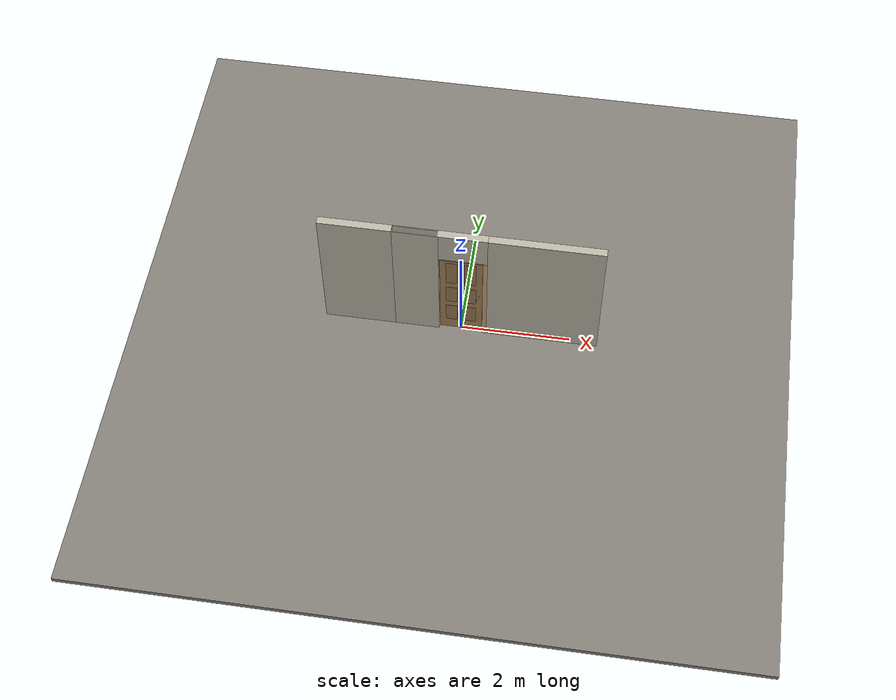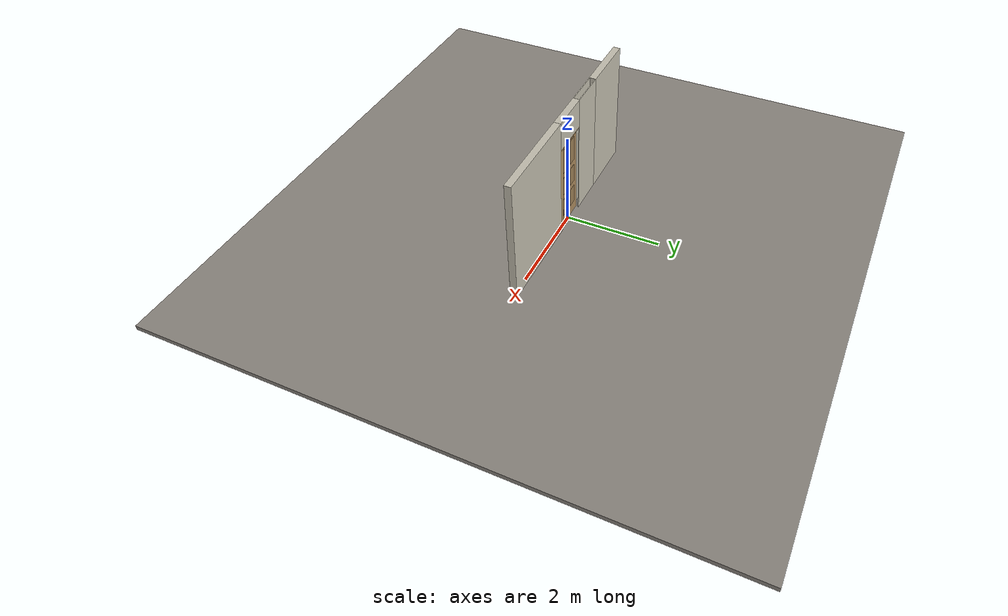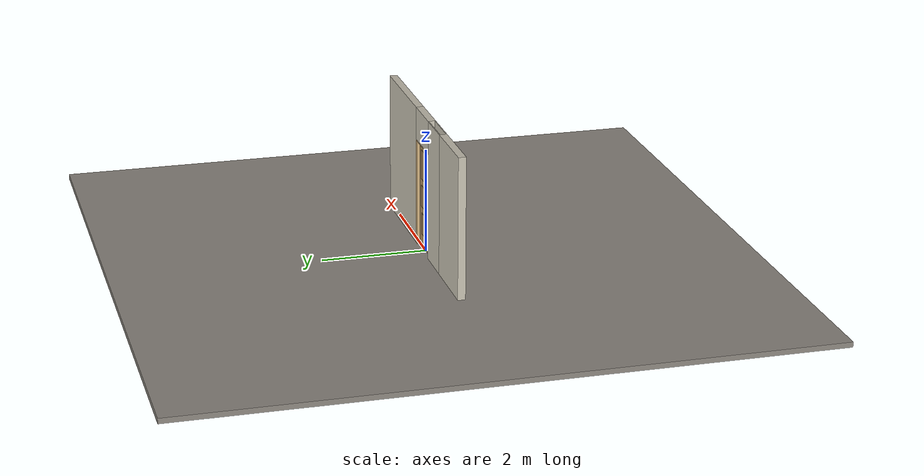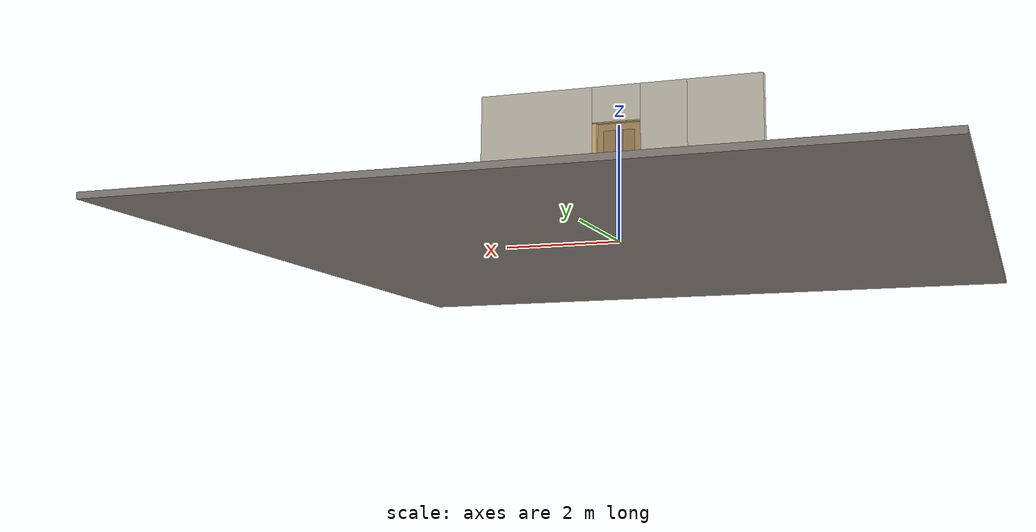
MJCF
<?xml version="1.0" ?>
<mujoco model="db0018_sliding_single_simple">
  <compiler angle="radian" meshdir="../../hardware" texturedir="../../textures" autolimits="true" inertiafromgeom="false"/>
  <option timestep="0.002" integrator="implicitfast" cone="elliptic" impratio="10" noslip_iterations="3">
    <flag multiccd="enable"/>
  </option>
  <size memory="16M"/>
  <default>
    <geom condim="4" solref="0.005 1" solimp="0.95 0.99 0.001"/>
    <joint solreflimit="0.005 1" solimplimit="0.95 0.99 0.001"/>
    <tendon solreflimit="0.005 1"/>
    <equality solref="0.002 1"/>
  </default>
  <visual>
    <headlight ambient="0.4 0.4 0.4" diffuse="0.7 0.7 0.7" specular="0.2 0.2 0.2"/>
    <quality shadowsize="4096"/>
    <map znear="0.01" zfar="60"/>
  </visual>
  <asset>
    <material name="mat_floor" rgba="0.55 0.53 0.5 1" specular="0.2" shininess="0.15" reflectance="0"/>
    <material name="mat_wall" rgba="0.78 0.76 0.7 1" specular="0.2" shininess="0.1" reflectance="0"/>
    <material name="mat_frame" rgba="0.82 0.7 0.5 1" specular="0.2" shininess="0.45" reflectance="0"/>
    <material name="mat_track" rgba="0.8 0.81 0.83 1" specular="0.8" shininess="0.6" reflectance="0.4"/>
    <material name="mat_leaf" rgba="0.684 0.555 0.375 1" specular="0.2" shininess="0.45" reflectance="0"/>
    <material name="mat_leaf_panel" rgba="0.629 0.51 0.345 1" specular="0.2" shininess="0.45" reflectance="0"/>
    <material name="mat_roller" rgba="0.65 0.66 0.68 1" specular="0.74" shininess="0.5" reflectance="0.36"/>
    <material name="mat_op_nickel_satin" rgba="0.72 0.7 0.66 1" specular="0.8" shininess="0.65" reflectance="0.4"/>
    <material name="mat_hook" rgba="0.75 0.76 0.77 1" specular="0.8" shininess="0.65" reflectance="0.4"/>
    <texture name="skybox" type="skybox" builtin="gradient" rgb1="0.6 0.7 0.85" rgb2="0.9 0.92 0.95" width="256" height="256"/>
  </asset>
  <worldbody>
    <light name="sun" pos="1.5 -2.5 4" dir="-0.3 0.5 -0.8" directional="true" diffuse="0.8 0.8 0.8" specular="0.3 0.3 0.3" castshadow="true"/>
    <light name="fill" pos="-1.5 2.5 3" dir="0.3 -0.5 -0.7" directional="true" diffuse="0.35 0.35 0.4" castshadow="false"/>
    <camera name="robot_view" pos="0 -2.54875 1.73965" xyaxes="1 0 0 0 0.26963 0.962964" fovy="52"/>
    <camera name="far_view" pos="0 2.54875 1.73965" xyaxes="-1 0 0 0 -0.26963 0.962964" fovy="52"/>
    <camera name="iso" pos="1.93705 -2.14095 2.14745" xyaxes="0.741536 0.670913 0 -0.242917 0.268487 0.932151" fovy="46"/>
    <camera name="detail_handle" pos="0.471 -0.8175 1.28" xyaxes="0.97561 0.219512 0 -0.070934 0.315262 0.94635" fovy="38"/>
    <geom name="floor" type="box" size="6 6 0.05" pos="0 0 -0.05" material="mat_floor" group="0" contype="1" conaffinity="1" friction="0.8 0.005 0.0001" density="2400"/>
    <geom name="wall_right" type="box" size="1.015 0.0725 1.35" pos="1.485 0 1.35" material="mat_wall" group="0" contype="1" conaffinity="1" friction="0.6 0.005 0.0001" density="800"/>
    <geom name="wall_header" type="box" size="0.44 0.0725 0.3145" pos="0.03 0 2.3855" material="mat_wall" group="0" contype="1" conaffinity="1" friction="0.6 0.005 0.0001" density="800"/>
    <geom name="pocket_skin_n" type="box" size="0.406 0.008 1.35" pos="-0.797 -0.0645 1.35" material="mat_wall" group="0" contype="1" conaffinity="1" friction="0.6 0.005 0.0001" density="800"/>
    <geom name="pocket_skin_p" type="box" size="0.406 0.008 1.35" pos="-0.797 0.0645 1.35" material="mat_wall" group="0" contype="1" conaffinity="1" friction="0.6 0.005 0.0001" density="800"/>
    <geom name="wall_pocket_far" type="box" size="0.6485 0.0725 1.35" pos="-1.8515 0 1.35" material="mat_wall" group="0" contype="1" conaffinity="1" friction="0.6 0.005 0.0001" density="800"/>
    <geom name="jamb_head" type="box" size="0.41 0.0725 0.0095" pos="0 0 2.0615" material="mat_frame" group="0" contype="1" conaffinity="1" friction="0.6 0.005 0.0001" density="300"/>
    <geom name="track_header" type="box" size="0.793 0.025 0.04" pos="-0.362 0 2.111" material="mat_track" group="0" contype="1" conaffinity="1" friction="0.6 0.005 0.0001" density="2700"/>
    <geom name="jamb_latch_0" type="box" size="0.0395 0.0725 1.026" pos="0.4305 0 1.026" material="mat_frame" group="0" contype="1" conaffinity="1" friction="0.6 0.005 0.0001" density="300"/>
    <geom name="track_header_bracket" type="box" size="0.6344 0.01625 0.032" pos="-0.362 0.04075 2.111" material="mat_hook" group="1" contype="0" conaffinity="0" density="7850"/>
    <site name="approach_point" pos="0 -1.5 0" quat="1 0 0 0" size="0.05" rgba="0.2 0.9 0.2 0.5" group="4"/>
    <site name="goal_point" pos="0 1.5 0" quat="1 0 0 0" size="0.05" rgba="0.2 0.9 0.2 0.5" group="4"/>
    <site name="door_plane_center" pos="0 0 1.026" quat="1 0 0 0" size="0.02" rgba="0.2 0.9 0.2 0.5" group="4"/>
    <body name="leaf" pos="0 0 0">
      <inertial pos="0.000081 0 1.028016" mass="21.727376" quat="0.500002 0.500002 0.499998 -0.499998" diaginertia="1.05364962 7.47565986 8.524866308"/>
      <joint name="leaf_slide" type="slide" axis="-1 0 0" limited="true" range="0 0.724" damping="3.086369" frictionloss="3.323935" armature="0.5"/>
      <geom name="leaf_slab" type="box" size="0.381 0.0175 1.016" pos="0 0 1.028" material="mat_leaf" group="0" contype="1" conaffinity="1" friction="0.35 0.005 0.0001" density="1"/>
      <geom name="leaf_panel_0_n" type="box" size="0.103 0.003 0.209032" pos="-0.168 -0.0205 0.464552" material="mat_leaf_panel" group="1" contype="0" conaffinity="0" density="1"/>
      <geom name="leaf_panel_0_p" type="box" size="0.103 0.003 0.209032" pos="-0.168 0.0205 0.464552" material="mat_leaf_panel" group="1" contype="0" conaffinity="0" density="1"/>
      <geom name="leaf_panel_1_n" type="box" size="0.103 0.003 0.209032" pos="0.168 -0.0205 0.464552" material="mat_leaf_panel" group="1" contype="0" conaffinity="0" density="1"/>
      <geom name="leaf_panel_1_p" type="box" size="0.103 0.003 0.209032" pos="0.168 0.0205 0.464552" material="mat_leaf_panel" group="1" contype="0" conaffinity="0" density="1"/>
      <geom name="leaf_panel_2_n" type="box" size="0.103 0.003 0.209032" pos="-0.168 -0.0205 1.012616" material="mat_leaf_panel" group="1" contype="0" conaffinity="0" density="1"/>
      <geom name="leaf_panel_2_p" type="box" size="0.103 0.003 0.209032" pos="-0.168 0.0205 1.012616" material="mat_leaf_panel" group="1" contype="0" conaffinity="0" density="1"/>
      <geom name="leaf_panel_3_n" type="box" size="0.103 0.003 0.209032" pos="0.168 -0.0205 1.012616" material="mat_leaf_panel" group="1" contype="0" conaffinity="0" density="1"/>
      <geom name="leaf_panel_3_p" type="box" size="0.103 0.003 0.209032" pos="0.168 0.0205 1.012616" material="mat_leaf_panel" group="1" contype="0" conaffinity="0" density="1"/>
      <geom name="leaf_panel_4_n" type="box" size="0.103 0.003 0.285376" pos="-0.168 -0.0205 1.637024" material="mat_leaf_panel" group="1" contype="0" conaffinity="0" density="1"/>
      <geom name="leaf_panel_4_p" type="box" size="0.103 0.003 0.285376" pos="-0.168 0.0205 1.637024" material="mat_leaf_panel" group="1" contype="0" conaffinity="0" density="1"/>
      <geom name="leaf_panel_5_n" type="box" size="0.103 0.003 0.285376" pos="0.168 -0.0205 1.637024" material="mat_leaf_panel" group="1" contype="0" conaffinity="0" density="1"/>
      <geom name="leaf_panel_5_p" type="box" size="0.103 0.003 0.285376" pos="0.168 0.0205 1.637024" material="mat_leaf_panel" group="1" contype="0" conaffinity="0" density="1"/>
      <geom name="leaf_pull_n" type="box" size="0.0275 0.0005 0.0275" pos="0.291 -0.018 1" material="mat_op_nickel_satin" group="1" contype="0" conaffinity="0" density="1000"/>
      <geom name="leaf_pull_p" type="box" size="0.0275 0.0005 0.0275" pos="0.291 0.018 1" material="mat_op_nickel_satin" group="1" contype="0" conaffinity="0" density="1000"/>
      <site name="leaf_pull_grip_n" pos="0.291 -0.0175 1" quat="1 0 0 0" size="0.012" rgba="0.2 0.9 0.2 0.5" group="4"/>
      <site name="leaf_pull_grip_p" pos="0.291 0.0175 1" quat="1 0 0 0" size="0.012" rgba="0.2 0.9 0.2 0.5" group="4"/>
      <site name="leaf_edge_mid" pos="0.381 0 1.028" quat="1 0 0 0" size="0.02" rgba="0.2 0.9 0.2 0.5" group="4"/>
    </body>
  </worldbody>
  <sensor>
    <jointpos name="leaf_slide_pos" joint="leaf_slide"/>
    <jointvel name="leaf_slide_vel" joint="leaf_slide"/>
  </sensor>
</mujoco>
